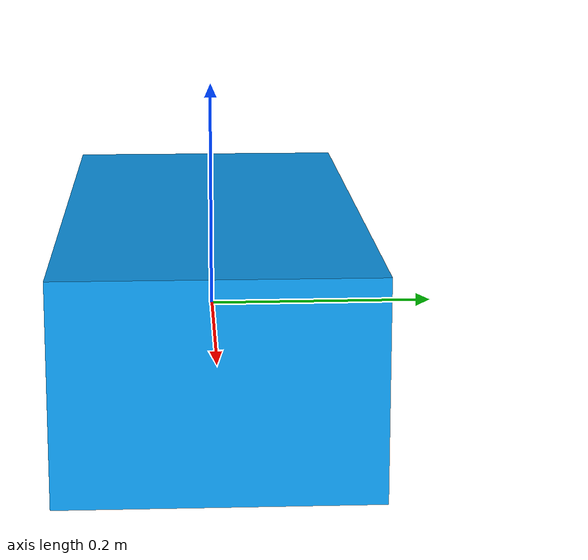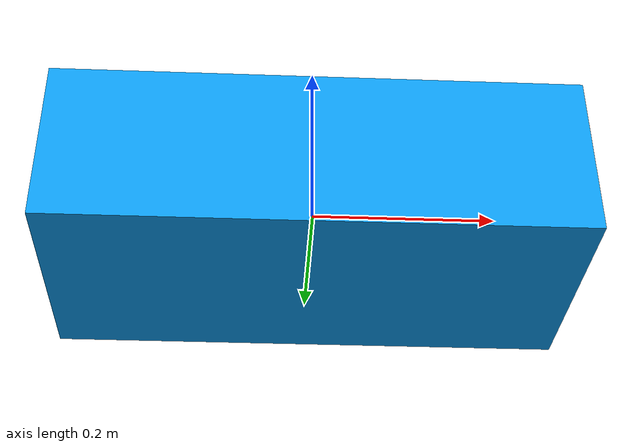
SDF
<?xml version="1.0" ?>
<sdf version="1.10">
  <model name="payload_box">
    <static>false</static>
    <link name="payload_link">
      <gravity>false</gravity>
      <inertial>
        <mass>2.0</mass>
        <inertia>
          <ixx>0.05</ixx>
          <iyy>0.12</iyy>
          <izz>0.13</izz>
          <ixy>0.0</ixy>
          <ixz>0.0</ixz>
          <iyz>0.0</iyz>
        </inertia>
      </inertial>
      <collision name="collision">
        <geometry>
          <box>
            <size>0.56 0.26 0.18</size>
          </box>
        </geometry>
      </collision>
      <visual name="visual">
        <geometry>
          <box>
            <size>0.56 0.26 0.18</size>
          </box>
        </geometry>
        <material>
          <ambient>0.05 0.62 0.95 1</ambient>
          <diffuse>0.05 0.62 0.95 1</diffuse>
          <emissive>0.05 0.20 0.30 1</emissive>
        </material>
      </visual>
    </link>
  </model>
</sdf>
